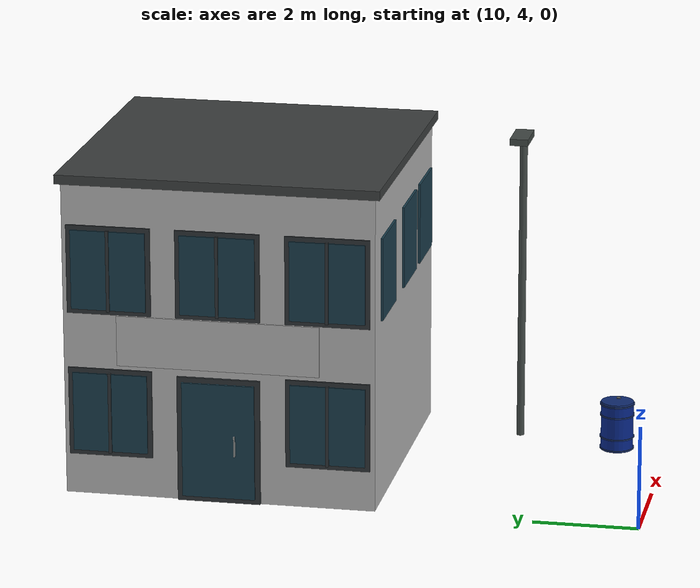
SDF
<sdf version="1.5">
 <world name="default">
  <include><uri>model://sun</uri></include>
  <model name="blue_drum">
   <static>true</static>
   <pose>14.5 5.0 0.003 0 0 0.0</pose>
   <link name="structure">
    <visual name="drum_body">
     <pose>0 0 0.48 0 0 0</pose>
     <geometry><cylinder><radius>0.32</radius><length>0.94</length></cylinder></geometry>
     <material>
      <ambient>0.03 0.15 0.53 1</ambient>
      <diffuse>0.03 0.15 0.53 1</diffuse>
      <specular>0.04 0.04 0.04 1</specular>
     </material>
    </visual>
    <collision name="drum_body_collision">
     <pose>0 0 0.48 0 0 0</pose>
     <geometry><cylinder><radius>0.32</radius><length>0.94</length></cylinder></geometry>
     <surface><friction><ode><mu>1.0</mu><mu2>1.0</mu2></ode></friction></surface>
    </collision>
    <visual name="drum_ring_0">
     <pose>0 0 0.04 0 0 0</pose>
     <geometry><cylinder><radius>0.342</radius><length>0.026</length></cylinder></geometry>
     <material>
      <ambient>0.1 0.19 0.4 1</ambient>
      <diffuse>0.1 0.19 0.4 1</diffuse>
      <specular>0.04 0.04 0.04 1</specular>
     </material>
    </visual>
    <visual name="drum_ring_1">
     <pose>0 0 0.27 0 0 0</pose>
     <geometry><cylinder><radius>0.342</radius><length>0.026</length></cylinder></geometry>
     <material>
      <ambient>0.1 0.19 0.4 1</ambient>
      <diffuse>0.1 0.19 0.4 1</diffuse>
      <specular>0.04 0.04 0.04 1</specular>
     </material>
    </visual>
    <visual name="drum_ring_2">
     <pose>0 0 0.72 0 0 0</pose>
     <geometry><cylinder><radius>0.342</radius><length>0.026</length></cylinder></geometry>
     <material>
      <ambient>0.1 0.19 0.4 1</ambient>
      <diffuse>0.1 0.19 0.4 1</diffuse>
      <specular>0.04 0.04 0.04 1</specular>
     </material>
    </visual>
    <visual name="drum_ring_3">
     <pose>0 0 0.94 0 0 0</pose>
     <geometry><cylinder><radius>0.342</radius><length>0.026</length></cylinder></geometry>
     <material>
      <ambient>0.1 0.19 0.4 1</ambient>
      <diffuse>0.1 0.19 0.4 1</diffuse>
      <specular>0.04 0.04 0.04 1</specular>
     </material>
    </visual>
    <visual name="drum_lid">
     <pose>0 0 0.971 0 0 0</pose>
     <geometry><cylinder><radius>0.32</radius><length>0.035</length></cylinder></geometry>
     <material>
      <ambient>0.07 0.18 0.46 1</ambient>
      <diffuse>0.07 0.18 0.46 1</diffuse>
      <specular>0.04 0.04 0.04 1</specular>
     </material>
    </visual>
    <visual name="lid_bung">
     <pose>0.17 0 0.997 0 0 0</pose>
     <geometry><cylinder><radius>0.043</radius><length>0.018</length></cylinder></geometry>
     <material>
      <ambient>0.39 0.4 0.4 1</ambient>
      <diffuse>0.39 0.4 0.4 1</diffuse>
      <specular>0.04 0.04 0.04 1</specular>
     </material>
    </visual>
   </link>
  </model>
  <model name="park_office">
   <static>true</static>
   <pose>13.0 12.0 0.003 0 0 0.0</pose>
   <link name="structure">
    <visual name="office_shell">
     <pose>0 0 3.05 0 0 0</pose>
     <geometry><box><size>6 6 6.1</size></box></geometry>
     <material>
      <script>
       <uri>file:///home/fxxk/px4_agent/scene/materials/scripts</uri>
       <uri>file:///home/fxxk/px4_agent/scene/materials/textures</uri>
       <name>Yard/concrete</name>
      </script>
     </material>
    </visual>
    <collision name="office_shell_collision">
     <pose>0 0 3.05 0 0 0</pose>
     <geometry><box><size>6 6 6.1</size></box></geometry>
     <surface><friction><ode><mu>1.0</mu><mu2>1.0</mu2></ode></friction></surface>
    </collision>
    <visual name="office_roof">
     <pose>0 0 6.19 0 0 0</pose>
     <geometry><box><size>6.2 6.2 0.18</size></box></geometry>
     <material>
      <ambient>0.24 0.25 0.25 1</ambient>
      <diffuse>0.24 0.25 0.25 1</diffuse>
      <specular>0.04 0.04 0.04 1</specular>
     </material>
    </visual>
    <collision name="office_roof_collision">
     <pose>0 0 6.19 0 0 0</pose>
     <geometry><box><size>6.2 6.2 0.18</size></box></geometry>
     <surface><friction><ode><mu>1.0</mu><mu2>1.0</mu2></ode></friction></surface>
    </collision>
    <visual name="front_frame_0_0">
     <pose>-3.025 -2.1 1.65 0 0 0</pose>
     <geometry><box><size>0.045 1.62 1.72</size></box></geometry>
     <material>
      <ambient>0.18 0.2 0.21 1</ambient>
      <diffuse>0.18 0.2 0.21 1</diffuse>
      <specular>0.04 0.04 0.04 1</specular>
     </material>
    </visual>
    <visual name="front_glass_0_0">
     <pose>-3.056 -2.1 1.65 0 0 0</pose>
     <geometry><box><size>0.05 1.44 1.54</size></box></geometry>
     <material>
      <ambient>0.1 0.24 0.3 1</ambient>
      <diffuse>0.1 0.24 0.3 1</diffuse>
      <specular>0.04 0.04 0.04 1</specular>
     </material>
    </visual>
    <visual name="window_mullion_0_0">
     <pose>-3.086 -2.1 1.65 0 0 0</pose>
     <geometry><box><size>0.055 0.06 1.58</size></box></geometry>
     <material>
      <ambient>0.18 0.2 0.21 1</ambient>
      <diffuse>0.18 0.2 0.21 1</diffuse>
      <specular>0.04 0.04 0.04 1</specular>
     </material>
    </visual>
    <visual name="front_frame_0_2">
     <pose>-3.025 2.1 1.65 0 0 0</pose>
     <geometry><box><size>0.045 1.62 1.72</size></box></geometry>
     <material>
      <ambient>0.18 0.2 0.21 1</ambient>
      <diffuse>0.18 0.2 0.21 1</diffuse>
      <specular>0.04 0.04 0.04 1</specular>
     </material>
    </visual>
    <visual name="front_glass_0_2">
     <pose>-3.056 2.1 1.65 0 0 0</pose>
     <geometry><box><size>0.05 1.44 1.54</size></box></geometry>
     <material>
      <ambient>0.1 0.24 0.3 1</ambient>
      <diffuse>0.1 0.24 0.3 1</diffuse>
      <specular>0.04 0.04 0.04 1</specular>
     </material>
    </visual>
    <visual name="window_mullion_0_2">
     <pose>-3.086 2.1 1.65 0 0 0</pose>
     <geometry><box><size>0.055 0.06 1.58</size></box></geometry>
     <material>
      <ambient>0.18 0.2 0.21 1</ambient>
      <diffuse>0.18 0.2 0.21 1</diffuse>
      <specular>0.04 0.04 0.04 1</specular>
     </material>
    </visual>
    <visual name="front_frame_1_0">
     <pose>-3.025 -2.1 4.45 0 0 0</pose>
     <geometry><box><size>0.045 1.62 1.72</size></box></geometry>
     <material>
      <ambient>0.18 0.2 0.21 1</ambient>
      <diffuse>0.18 0.2 0.21 1</diffuse>
      <specular>0.04 0.04 0.04 1</specular>
     </material>
    </visual>
    <visual name="front_glass_1_0">
     <pose>-3.056 -2.1 4.45 0 0 0</pose>
     <geometry><box><size>0.05 1.44 1.54</size></box></geometry>
     <material>
      <ambient>0.1 0.24 0.3 1</ambient>
      <diffuse>0.1 0.24 0.3 1</diffuse>
      <specular>0.04 0.04 0.04 1</specular>
     </material>
    </visual>
    <visual name="window_mullion_1_0">
     <pose>-3.086 -2.1 4.45 0 0 0</pose>
     <geometry><box><size>0.055 0.06 1.58</size></box></geometry>
     <material>
      <ambient>0.18 0.2 0.21 1</ambient>
      <diffuse>0.18 0.2 0.21 1</diffuse>
      <specular>0.04 0.04 0.04 1</specular>
     </material>
    </visual>
    <visual name="front_frame_1_1">
     <pose>-3.025 0 4.45 0 0 0</pose>
     <geometry><box><size>0.045 1.62 1.72</size></box></geometry>
     <material>
      <ambient>0.18 0.2 0.21 1</ambient>
      <diffuse>0.18 0.2 0.21 1</diffuse>
      <specular>0.04 0.04 0.04 1</specular>
     </material>
    </visual>
    <visual name="front_glass_1_1">
     <pose>-3.056 0 4.45 0 0 0</pose>
     <geometry><box><size>0.05 1.44 1.54</size></box></geometry>
     <material>
      <ambient>0.1 0.24 0.3 1</ambient>
      <diffuse>0.1 0.24 0.3 1</diffuse>
      <specular>0.04 0.04 0.04 1</specular>
     </material>
    </visual>
    <visual name="window_mullion_1_1">
     <pose>-3.086 0 4.45 0 0 0</pose>
     <geometry><box><size>0.055 0.06 1.58</size></box></geometry>
     <material>
      <ambient>0.18 0.2 0.21 1</ambient>
      <diffuse>0.18 0.2 0.21 1</diffuse>
      <specular>0.04 0.04 0.04 1</specular>
     </material>
    </visual>
    <visual name="front_frame_1_2">
     <pose>-3.025 2.1 4.45 0 0 0</pose>
     <geometry><box><size>0.045 1.62 1.72</size></box></geometry>
     <material>
      <ambient>0.18 0.2 0.21 1</ambient>
      <diffuse>0.18 0.2 0.21 1</diffuse>
      <specular>0.04 0.04 0.04 1</specular>
     </material>
    </visual>
    <visual name="front_glass_1_2">
     <pose>-3.056 2.1 4.45 0 0 0</pose>
     <geometry><box><size>0.05 1.44 1.54</size></box></geometry>
     <material>
      <ambient>0.1 0.24 0.3 1</ambient>
      <diffuse>0.1 0.24 0.3 1</diffuse>
      <specular>0.04 0.04 0.04 1</specular>
     </material>
    </visual>
    <visual name="window_mullion_1_2">
     <pose>-3.086 2.1 4.45 0 0 0</pose>
     <geometry><box><size>0.055 0.06 1.58</size></box></geometry>
     <material>
      <ambient>0.18 0.2 0.21 1</ambient>
      <diffuse>0.18 0.2 0.21 1</diffuse>
      <specular>0.04 0.04 0.04 1</specular>
     </material>
    </visual>
    <visual name="entrance_frame">
     <pose>-3.036 0 1.225 0 0 0</pose>
     <geometry><box><size>0.06 1.6 2.45</size></box></geometry>
     <material>
      <ambient>0.18 0.2 0.21 1</ambient>
      <diffuse>0.18 0.2 0.21 1</diffuse>
      <specular>0.04 0.04 0.04 1</specular>
     </material>
    </visual>
    <visual name="glass_entrance">
     <pose>-3.076 0 1.225 0 0 0</pose>
     <geometry><box><size>0.065 1.4 2.25</size></box></geometry>
     <material>
      <ambient>0.1 0.24 0.3 1</ambient>
      <diffuse>0.1 0.24 0.3 1</diffuse>
      <specular>0.04 0.04 0.04 1</specular>
     </material>
    </visual>
    <visual name="door_handle">
     <pose>-3.13 -0.32 1.15 0 0 0</pose>
     <geometry><box><size>0.07 0.028 0.4</size></box></geometry>
     <material>
      <ambient>0.63 0.65 0.65 1</ambient>
      <diffuse>0.63 0.65 0.65 1</diffuse>
      <specular>0.04 0.04 0.04 1</specular>
     </material>
    </visual>
    <visual name="office_name">
     <pose>-3.07 0 3.1 0 0 0</pose>
     <geometry><box><size>0.04 3.9 0.98</size></box></geometry>
     <material>
      <script>
       <uri>file:///home/fxxk/px4_agent/scene/materials/scripts</uri>
       <uri>file:///home/fxxk/px4_agent/scene/materials/textures</uri>
       <name>Yard/office_sign</name>
      </script>
     </material>
    </visual>
    <visual name="side_window_-1_0">
     <pose>-1.8 -3.029 4.4 0 0 0</pose>
     <geometry><box><size>1.35 0.045 1.6</size></box></geometry>
     <material>
      <ambient>0.1 0.24 0.3 1</ambient>
      <diffuse>0.1 0.24 0.3 1</diffuse>
      <specular>0.04 0.04 0.04 1</specular>
     </material>
    </visual>
    <visual name="side_window_-1_1">
     <pose>0.4 -3.029 4.4 0 0 0</pose>
     <geometry><box><size>1.35 0.045 1.6</size></box></geometry>
     <material>
      <ambient>0.1 0.24 0.3 1</ambient>
      <diffuse>0.1 0.24 0.3 1</diffuse>
      <specular>0.04 0.04 0.04 1</specular>
     </material>
    </visual>
    <visual name="side_window_-1_2">
     <pose>2.1 -3.029 4.4 0 0 0</pose>
     <geometry><box><size>1.35 0.045 1.6</size></box></geometry>
     <material>
      <ambient>0.1 0.24 0.3 1</ambient>
      <diffuse>0.1 0.24 0.3 1</diffuse>
      <specular>0.04 0.04 0.04 1</specular>
     </material>
    </visual>
    <visual name="side_window_1_0">
     <pose>-1.8 3.029 4.4 0 0 0</pose>
     <geometry><box><size>1.35 0.045 1.6</size></box></geometry>
     <material>
      <ambient>0.1 0.24 0.3 1</ambient>
      <diffuse>0.1 0.24 0.3 1</diffuse>
      <specular>0.04 0.04 0.04 1</specular>
     </material>
    </visual>
    <visual name="side_window_1_1">
     <pose>0.4 3.029 4.4 0 0 0</pose>
     <geometry><box><size>1.35 0.045 1.6</size></box></geometry>
     <material>
      <ambient>0.1 0.24 0.3 1</ambient>
      <diffuse>0.1 0.24 0.3 1</diffuse>
      <specular>0.04 0.04 0.04 1</specular>
     </material>
    </visual>
    <visual name="side_window_1_2">
     <pose>2.1 3.029 4.4 0 0 0</pose>
     <geometry><box><size>1.35 0.045 1.6</size></box></geometry>
     <material>
      <ambient>0.1 0.24 0.3 1</ambient>
      <diffuse>0.1 0.24 0.3 1</diffuse>
      <specular>0.04 0.04 0.04 1</specular>
     </material>
    </visual>
   </link>
  </model>
  <model name="street_lamp_north">
   <static>true</static>
   <pose>15.0 7.0 0.003 0 0 0.0</pose>
   <link name="structure">
    <visual name="lamp_pole">
     <pose>0 0 3.075 0 0 0</pose>
     <geometry><cylinder><radius>0.075</radius><length>6.15</length></cylinder></geometry>
     <material>
      <ambient>0.26 0.29 0.28 1</ambient>
      <diffuse>0.26 0.29 0.28 1</diffuse>
      <specular>0.04 0.04 0.04 1</specular>
     </material>
    </visual>
    <collision name="lamp_pole_collision">
     <pose>0 0 3.075 0 0 0</pose>
     <geometry><cylinder><radius>0.075</radius><length>6.15</length></cylinder></geometry>
     <surface><friction><ode><mu>1.0</mu><mu2>1.0</mu2></ode></friction></surface>
    </collision>
    <visual name="lamp_head">
     <pose>-0.26 0 6.17 0 0 0</pose>
     <geometry><box><size>0.82 0.36 0.13</size></box></geometry>
     <material>
      <ambient>0.26 0.29 0.28 1</ambient>
      <diffuse>0.26 0.29 0.28 1</diffuse>
      <specular>0.04 0.04 0.04 1</specular>
     </material>
    </visual>
    <visual name="lamp_glass">
     <pose>-0.26 0 6.098 0 0 0</pose>
     <geometry><box><size>0.67 0.28 0.015</size></box></geometry>
     <cast_shadows>false</cast_shadows>
     <material>
      <ambient>0.82 0.82 0.66 1</ambient>
      <diffuse>0.82 0.82 0.66 1</diffuse>
      <specular>0.04 0.04 0.04 1</specular>
     </material>
    </visual>
   </link>
  </model>
 </world>
</sdf>
